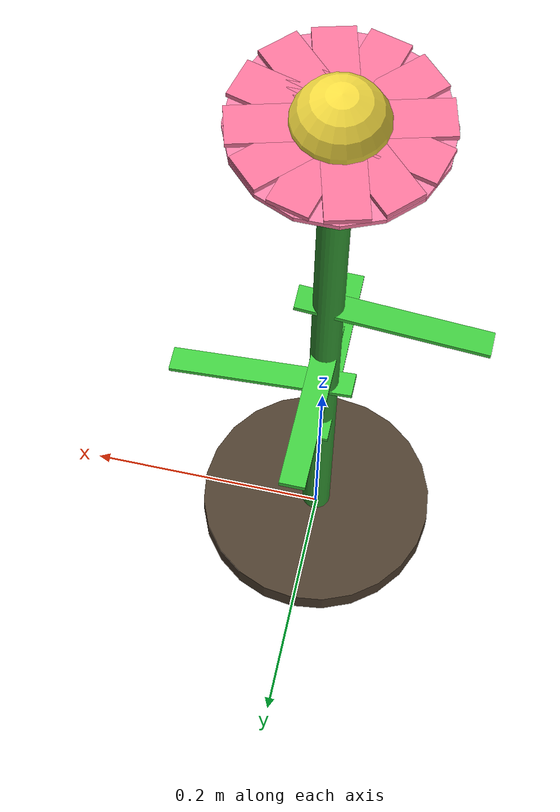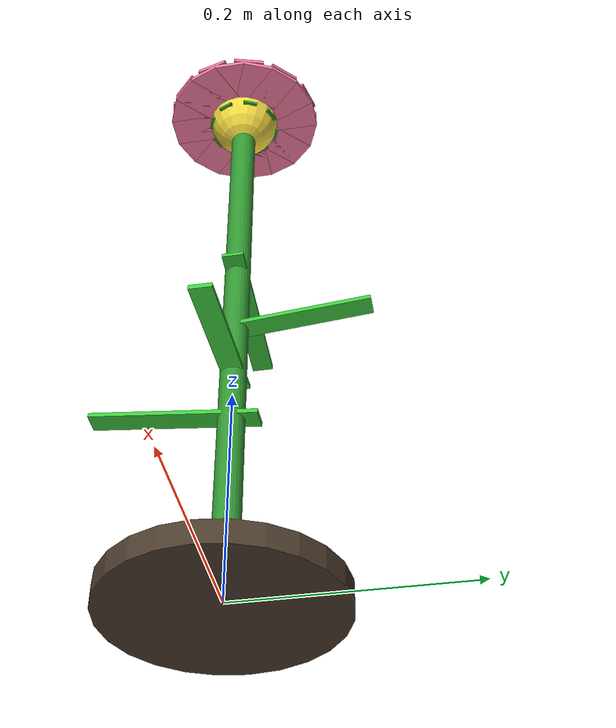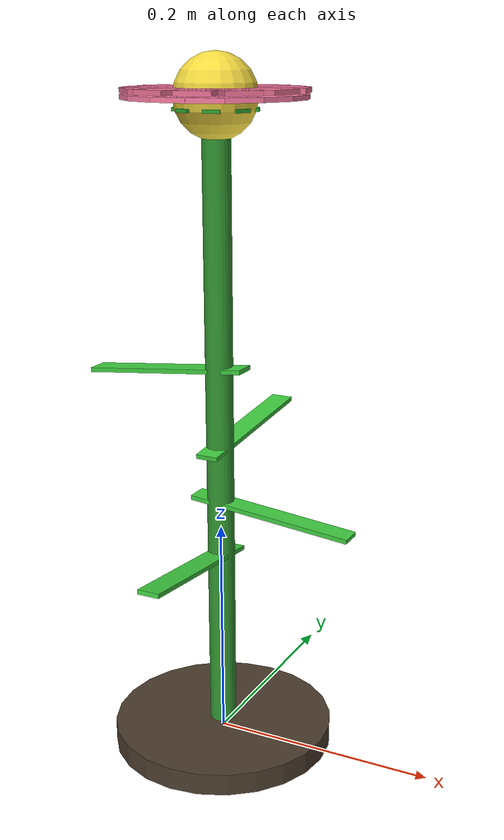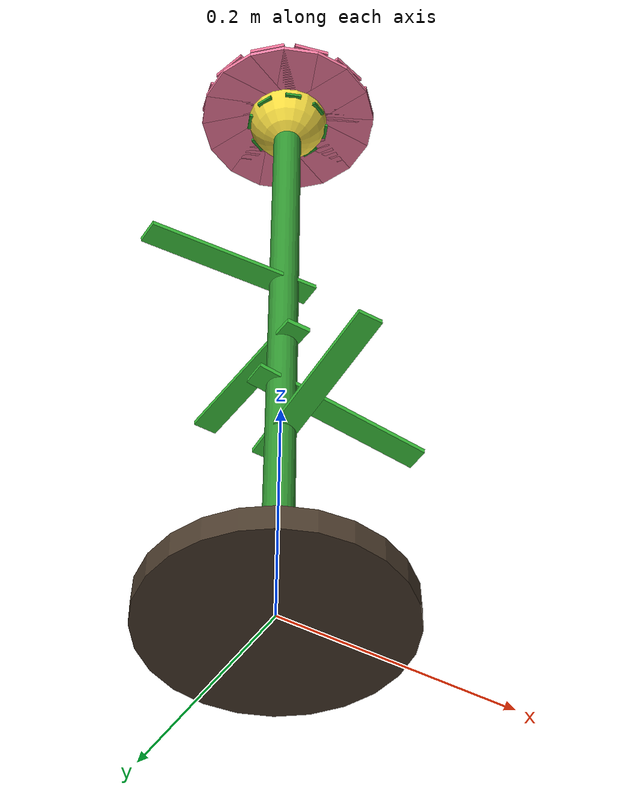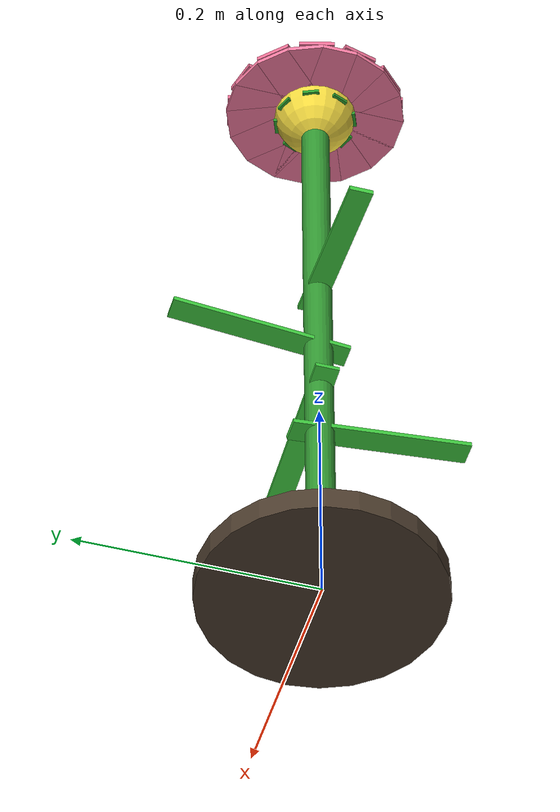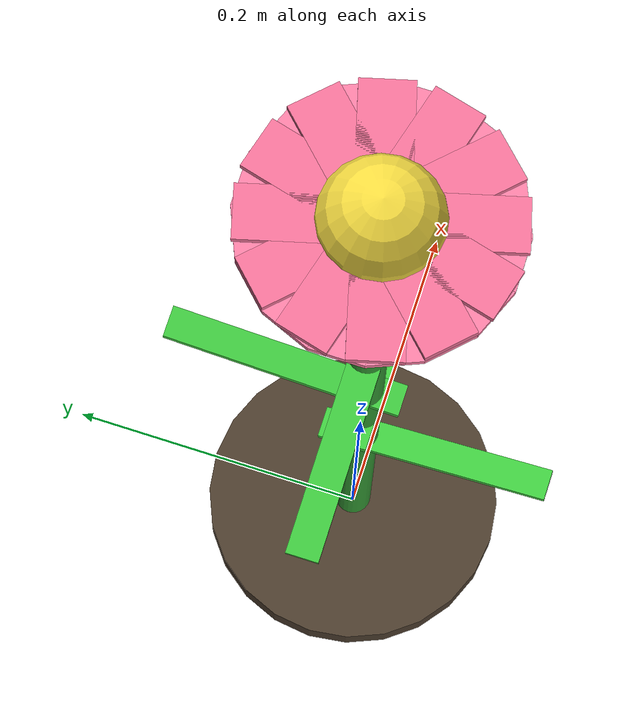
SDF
<?xml version="1.0" ?>
<sdf version="1.7">
  <model name="flower_v3">
    <static>true</static>

    <!-- Base -->
    <link name="base">
      <pose>0 0 0 0 0 0</pose>
      <collision name="base_collision">
        <geometry><cylinder><radius>0.1</radius><length>0.02</length></cylinder></geometry>
      </collision>
      <visual name="base_visual">
        <geometry><cylinder><radius>0.1</radius><length>0.02</length></cylinder></geometry>
        <material>
          <ambient>0.25 0.2 0.15 1</ambient>
          <diffuse>0.3 0.24 0.18 1</diffuse>
          <specular>0.05 0.05 0.05 1</specular>
        </material>
      </visual>
    </link>

    <!-- Stem -->
    <link name="stem">
      <pose>0 0 0.275 0 0 0</pose>
      <collision name="stem_collision">
        <geometry><cylinder><radius>0.012</radius><length>0.55</length></cylinder></geometry>
      </collision>
      <visual name="stem_visual">
        <geometry><cylinder><radius>0.012</radius><length>0.55</length></cylinder></geometry>
        <material>
          <ambient>0.1 0.3 0.1 1</ambient>
          <diffuse>0.2 0.6 0.2 1</diffuse>
          <specular>0.05 0.05 0.05 1</specular>
        </material>
      </visual>
    </link>

    <!-- Center -->
    <link name="center">
      <pose>0 0 0.570 0 0 0</pose>
      <collision name="center_collision">
        <geometry><sphere><radius>0.035</radius></sphere></geometry>
      </collision>
      <visual name="center_visual">
        <geometry><sphere><radius>0.035</radius></sphere></geometry>
        <material>
          <ambient>0.6 0.5 0.1 1</ambient>
          <diffuse>0.95 0.85 0.25 1</diffuse>
          <specular>0.15 0.15 0.15 1</specular>
        </material>
      </visual>
    </link>

    <!-- Petals -->
    <link name="petal_r1_0">
      <pose>0 0 0.5700000000000001 0 0 0.0</pose>
      <collision name="petal_r1_0_collision">
        <geometry>
          <box><size>0.15 0.03 0.004</size></box>
        </geometry>
      </collision>
      <visual name="petal_r1_0_visual">
        <geometry>
          <box><size>0.15 0.03 0.004</size></box>
        </geometry>
        <material>
          <ambient>0.55 0.2 0.3 1</ambient>
          <diffuse>1.0 0.5 0.65 1</diffuse>
          <specular>0.2 0.2 0.2 1</specular>
        </material>
      </visual>
    </link>
    <link name="petal_r1_1">
      <pose>0 0 0.5700000000000001 0 0 0.39269908169872414</pose>
      <collision name="petal_r1_1_collision">
        <geometry>
          <box><size>0.15 0.03 0.004</size></box>
        </geometry>
      </collision>
      <visual name="petal_r1_1_visual">
        <geometry>
          <box><size>0.15 0.03 0.004</size></box>
        </geometry>
        <material>
          <ambient>0.55 0.2 0.3 1</ambient>
          <diffuse>1.0 0.5 0.65 1</diffuse>
          <specular>0.2 0.2 0.2 1</specular>
        </material>
      </visual>
    </link>
    <link name="petal_r1_2">
      <pose>0 0 0.5700000000000001 0 0 0.7853981633974483</pose>
      <collision name="petal_r1_2_collision">
        <geometry>
          <box><size>0.15 0.03 0.004</size></box>
        </geometry>
      </collision>
      <visual name="petal_r1_2_visual">
        <geometry>
          <box><size>0.15 0.03 0.004</size></box>
        </geometry>
        <material>
          <ambient>0.55 0.2 0.3 1</ambient>
          <diffuse>1.0 0.5 0.65 1</diffuse>
          <specular>0.2 0.2 0.2 1</specular>
        </material>
      </visual>
    </link>
    <link name="petal_r1_3">
      <pose>0 0 0.5700000000000001 0 0 1.1780972450961724</pose>
      <collision name="petal_r1_3_collision">
        <geometry>
          <box><size>0.15 0.03 0.004</size></box>
        </geometry>
      </collision>
      <visual name="petal_r1_3_visual">
        <geometry>
          <box><size>0.15 0.03 0.004</size></box>
        </geometry>
        <material>
          <ambient>0.55 0.2 0.3 1</ambient>
          <diffuse>1.0 0.5 0.65 1</diffuse>
          <specular>0.2 0.2 0.2 1</specular>
        </material>
      </visual>
    </link>
    <link name="petal_r1_4">
      <pose>0 0 0.5700000000000001 0 0 1.5707963267948966</pose>
      <collision name="petal_r1_4_collision">
        <geometry>
          <box><size>0.15 0.03 0.004</size></box>
        </geometry>
      </collision>
      <visual name="petal_r1_4_visual">
        <geometry>
          <box><size>0.15 0.03 0.004</size></box>
        </geometry>
        <material>
          <ambient>0.55 0.2 0.3 1</ambient>
          <diffuse>1.0 0.5 0.65 1</diffuse>
          <specular>0.2 0.2 0.2 1</specular>
        </material>
      </visual>
    </link>
    <link name="petal_r1_5">
      <pose>0 0 0.5700000000000001 0 0 1.9634954084936207</pose>
      <collision name="petal_r1_5_collision">
        <geometry>
          <box><size>0.15 0.03 0.004</size></box>
        </geometry>
      </collision>
      <visual name="petal_r1_5_visual">
        <geometry>
          <box><size>0.15 0.03 0.004</size></box>
        </geometry>
        <material>
          <ambient>0.55 0.2 0.3 1</ambient>
          <diffuse>1.0 0.5 0.65 1</diffuse>
          <specular>0.2 0.2 0.2 1</specular>
        </material>
      </visual>
    </link>
    <link name="petal_r1_6">
      <pose>0 0 0.5700000000000001 0 0 2.356194490192345</pose>
      <collision name="petal_r1_6_collision">
        <geometry>
          <box><size>0.15 0.03 0.004</size></box>
        </geometry>
      </collision>
      <visual name="petal_r1_6_visual">
        <geometry>
          <box><size>0.15 0.03 0.004</size></box>
        </geometry>
        <material>
          <ambient>0.55 0.2 0.3 1</ambient>
          <diffuse>1.0 0.5 0.65 1</diffuse>
          <specular>0.2 0.2 0.2 1</specular>
        </material>
      </visual>
    </link>
    <link name="petal_r1_7">
      <pose>0 0 0.5700000000000001 0 0 2.748893571891069</pose>
      <collision name="petal_r1_7_collision">
        <geometry>
          <box><size>0.15 0.03 0.004</size></box>
        </geometry>
      </collision>
      <visual name="petal_r1_7_visual">
        <geometry>
          <box><size>0.15 0.03 0.004</size></box>
        </geometry>
        <material>
          <ambient>0.55 0.2 0.3 1</ambient>
          <diffuse>1.0 0.5 0.65 1</diffuse>
          <specular>0.2 0.2 0.2 1</specular>
        </material>
      </visual>
    </link>
    <link name="petal_r1_8">
      <pose>0 0 0.5700000000000001 0 0 3.141592653589793</pose>
      <collision name="petal_r1_8_collision">
        <geometry>
          <box><size>0.15 0.03 0.004</size></box>
        </geometry>
      </collision>
      <visual name="petal_r1_8_visual">
        <geometry>
          <box><size>0.15 0.03 0.004</size></box>
        </geometry>
        <material>
          <ambient>0.55 0.2 0.3 1</ambient>
          <diffuse>1.0 0.5 0.65 1</diffuse>
          <specular>0.2 0.2 0.2 1</specular>
        </material>
      </visual>
    </link>
    <link name="petal_r1_9">
      <pose>0 0 0.5700000000000001 0 0 3.5342917352885173</pose>
      <collision name="petal_r1_9_collision">
        <geometry>
          <box><size>0.15 0.03 0.004</size></box>
        </geometry>
      </collision>
      <visual name="petal_r1_9_visual">
        <geometry>
          <box><size>0.15 0.03 0.004</size></box>
        </geometry>
        <material>
          <ambient>0.55 0.2 0.3 1</ambient>
          <diffuse>1.0 0.5 0.65 1</diffuse>
          <specular>0.2 0.2 0.2 1</specular>
        </material>
      </visual>
    </link>
    <link name="petal_r1_10">
      <pose>0 0 0.5700000000000001 0 0 3.9269908169872414</pose>
      <collision name="petal_r1_10_collision">
        <geometry>
          <box><size>0.15 0.03 0.004</size></box>
        </geometry>
      </collision>
      <visual name="petal_r1_10_visual">
        <geometry>
          <box><size>0.15 0.03 0.004</size></box>
        </geometry>
        <material>
          <ambient>0.55 0.2 0.3 1</ambient>
          <diffuse>1.0 0.5 0.65 1</diffuse>
          <specular>0.2 0.2 0.2 1</specular>
        </material>
      </visual>
    </link>
    <link name="petal_r1_11">
      <pose>0 0 0.5700000000000001 0 0 4.319689898685965</pose>
      <collision name="petal_r1_11_collision">
        <geometry>
          <box><size>0.15 0.03 0.004</size></box>
        </geometry>
      </collision>
      <visual name="petal_r1_11_visual">
        <geometry>
          <box><size>0.15 0.03 0.004</size></box>
        </geometry>
        <material>
          <ambient>0.55 0.2 0.3 1</ambient>
          <diffuse>1.0 0.5 0.65 1</diffuse>
          <specular>0.2 0.2 0.2 1</specular>
        </material>
      </visual>
    </link>
    <link name="petal_r1_12">
      <pose>0 0 0.5700000000000001 0 0 4.71238898038469</pose>
      <collision name="petal_r1_12_collision">
        <geometry>
          <box><size>0.15 0.03 0.004</size></box>
        </geometry>
      </collision>
      <visual name="petal_r1_12_visual">
        <geometry>
          <box><size>0.15 0.03 0.004</size></box>
        </geometry>
        <material>
          <ambient>0.55 0.2 0.3 1</ambient>
          <diffuse>1.0 0.5 0.65 1</diffuse>
          <specular>0.2 0.2 0.2 1</specular>
        </material>
      </visual>
    </link>
    <link name="petal_r1_13">
      <pose>0 0 0.5700000000000001 0 0 5.105088062083414</pose>
      <collision name="petal_r1_13_collision">
        <geometry>
          <box><size>0.15 0.03 0.004</size></box>
        </geometry>
      </collision>
      <visual name="petal_r1_13_visual">
        <geometry>
          <box><size>0.15 0.03 0.004</size></box>
        </geometry>
        <material>
          <ambient>0.55 0.2 0.3 1</ambient>
          <diffuse>1.0 0.5 0.65 1</diffuse>
          <specular>0.2 0.2 0.2 1</specular>
        </material>
      </visual>
    </link>
    <link name="petal_r1_14">
      <pose>0 0 0.5700000000000001 0 0 5.497787143782138</pose>
      <collision name="petal_r1_14_collision">
        <geometry>
          <box><size>0.15 0.03 0.004</size></box>
        </geometry>
      </collision>
      <visual name="petal_r1_14_visual">
        <geometry>
          <box><size>0.15 0.03 0.004</size></box>
        </geometry>
        <material>
          <ambient>0.55 0.2 0.3 1</ambient>
          <diffuse>1.0 0.5 0.65 1</diffuse>
          <specular>0.2 0.2 0.2 1</specular>
        </material>
      </visual>
    </link>
    <link name="petal_r1_15">
      <pose>0 0 0.5700000000000001 0 0 5.890486225480862</pose>
      <collision name="petal_r1_15_collision">
        <geometry>
          <box><size>0.15 0.03 0.004</size></box>
        </geometry>
      </collision>
      <visual name="petal_r1_15_visual">
        <geometry>
          <box><size>0.15 0.03 0.004</size></box>
        </geometry>
        <material>
          <ambient>0.55 0.2 0.3 1</ambient>
          <diffuse>1.0 0.5 0.65 1</diffuse>
          <specular>0.2 0.2 0.2 1</specular>
        </material>
      </visual>
    </link>
    <link name="petal_r2_0">
      <pose>0 0 0.5750000000000001 0 0 0.2617993877991494</pose>
      <collision name="petal_r2_0_collision">
        <geometry>
          <box><size>0.15 0.03 0.004</size></box>
        </geometry>
      </collision>
      <visual name="petal_r2_0_visual">
        <geometry>
          <box><size>0.15 0.03 0.004</size></box>
        </geometry>
        <material>
          <ambient>0.45 0.15 0.25 1</ambient>
          <diffuse>0.95 0.45 0.6 1</diffuse>
          <specular>0.2 0.2 0.2 1</specular>
        </material>
      </visual>
    </link>
    <link name="petal_r2_1">
      <pose>0 0 0.5750000000000001 0 0 0.7853981633974483</pose>
      <collision name="petal_r2_1_collision">
        <geometry>
          <box><size>0.15 0.03 0.004</size></box>
        </geometry>
      </collision>
      <visual name="petal_r2_1_visual">
        <geometry>
          <box><size>0.15 0.03 0.004</size></box>
        </geometry>
        <material>
          <ambient>0.45 0.15 0.25 1</ambient>
          <diffuse>0.95 0.45 0.6 1</diffuse>
          <specular>0.2 0.2 0.2 1</specular>
        </material>
      </visual>
    </link>
    <link name="petal_r2_2">
      <pose>0 0 0.5750000000000001 0 0 1.308996938995747</pose>
      <collision name="petal_r2_2_collision">
        <geometry>
          <box><size>0.15 0.03 0.004</size></box>
        </geometry>
      </collision>
      <visual name="petal_r2_2_visual">
        <geometry>
          <box><size>0.15 0.03 0.004</size></box>
        </geometry>
        <material>
          <ambient>0.45 0.15 0.25 1</ambient>
          <diffuse>0.95 0.45 0.6 1</diffuse>
          <specular>0.2 0.2 0.2 1</specular>
        </material>
      </visual>
    </link>
    <link name="petal_r2_3">
      <pose>0 0 0.5750000000000001 0 0 1.832595714594046</pose>
      <collision name="petal_r2_3_collision">
        <geometry>
          <box><size>0.15 0.03 0.004</size></box>
        </geometry>
      </collision>
      <visual name="petal_r2_3_visual">
        <geometry>
          <box><size>0.15 0.03 0.004</size></box>
        </geometry>
        <material>
          <ambient>0.45 0.15 0.25 1</ambient>
          <diffuse>0.95 0.45 0.6 1</diffuse>
          <specular>0.2 0.2 0.2 1</specular>
        </material>
      </visual>
    </link>
    <link name="petal_r2_4">
      <pose>0 0 0.5750000000000001 0 0 2.356194490192345</pose>
      <collision name="petal_r2_4_collision">
        <geometry>
          <box><size>0.15 0.03 0.004</size></box>
        </geometry>
      </collision>
      <visual name="petal_r2_4_visual">
        <geometry>
          <box><size>0.15 0.03 0.004</size></box>
        </geometry>
        <material>
          <ambient>0.45 0.15 0.25 1</ambient>
          <diffuse>0.95 0.45 0.6 1</diffuse>
          <specular>0.2 0.2 0.2 1</specular>
        </material>
      </visual>
    </link>
    <link name="petal_r2_5">
      <pose>0 0 0.5750000000000001 0 0 2.8797932657906435</pose>
      <collision name="petal_r2_5_collision">
        <geometry>
          <box><size>0.15 0.03 0.004</size></box>
        </geometry>
      </collision>
      <visual name="petal_r2_5_visual">
        <geometry>
          <box><size>0.15 0.03 0.004</size></box>
        </geometry>
        <material>
          <ambient>0.45 0.15 0.25 1</ambient>
          <diffuse>0.95 0.45 0.6 1</diffuse>
          <specular>0.2 0.2 0.2 1</specular>
        </material>
      </visual>
    </link>
    <link name="petal_r2_6">
      <pose>0 0 0.5750000000000001 0 0 3.4033920413889427</pose>
      <collision name="petal_r2_6_collision">
        <geometry>
          <box><size>0.15 0.03 0.004</size></box>
        </geometry>
      </collision>
      <visual name="petal_r2_6_visual">
        <geometry>
          <box><size>0.15 0.03 0.004</size></box>
        </geometry>
        <material>
          <ambient>0.45 0.15 0.25 1</ambient>
          <diffuse>0.95 0.45 0.6 1</diffuse>
          <specular>0.2 0.2 0.2 1</specular>
        </material>
      </visual>
    </link>
    <link name="petal_r2_7">
      <pose>0 0 0.5750000000000001 0 0 3.9269908169872414</pose>
      <collision name="petal_r2_7_collision">
        <geometry>
          <box><size>0.15 0.03 0.004</size></box>
        </geometry>
      </collision>
      <visual name="petal_r2_7_visual">
        <geometry>
          <box><size>0.15 0.03 0.004</size></box>
        </geometry>
        <material>
          <ambient>0.45 0.15 0.25 1</ambient>
          <diffuse>0.95 0.45 0.6 1</diffuse>
          <specular>0.2 0.2 0.2 1</specular>
        </material>
      </visual>
    </link>
    <link name="petal_r2_8">
      <pose>0 0 0.5750000000000001 0 0 4.45058959258554</pose>
      <collision name="petal_r2_8_collision">
        <geometry>
          <box><size>0.15 0.03 0.004</size></box>
        </geometry>
      </collision>
      <visual name="petal_r2_8_visual">
        <geometry>
          <box><size>0.15 0.03 0.004</size></box>
        </geometry>
        <material>
          <ambient>0.45 0.15 0.25 1</ambient>
          <diffuse>0.95 0.45 0.6 1</diffuse>
          <specular>0.2 0.2 0.2 1</specular>
        </material>
      </visual>
    </link>
    <link name="petal_r2_9">
      <pose>0 0 0.5750000000000001 0 0 4.974188368183839</pose>
      <collision name="petal_r2_9_collision">
        <geometry>
          <box><size>0.15 0.03 0.004</size></box>
        </geometry>
      </collision>
      <visual name="petal_r2_9_visual">
        <geometry>
          <box><size>0.15 0.03 0.004</size></box>
        </geometry>
        <material>
          <ambient>0.45 0.15 0.25 1</ambient>
          <diffuse>0.95 0.45 0.6 1</diffuse>
          <specular>0.2 0.2 0.2 1</specular>
        </material>
      </visual>
    </link>
    <link name="petal_r2_10">
      <pose>0 0 0.5750000000000001 0 0 5.497787143782137</pose>
      <collision name="petal_r2_10_collision">
        <geometry>
          <box><size>0.15 0.03 0.004</size></box>
        </geometry>
      </collision>
      <visual name="petal_r2_10_visual">
        <geometry>
          <box><size>0.15 0.03 0.004</size></box>
        </geometry>
        <material>
          <ambient>0.45 0.15 0.25 1</ambient>
          <diffuse>0.95 0.45 0.6 1</diffuse>
          <specular>0.2 0.2 0.2 1</specular>
        </material>
      </visual>
    </link>
    <link name="petal_r2_11">
      <pose>0 0 0.5750000000000001 0 0 6.021385919380436</pose>
      <collision name="petal_r2_11_collision">
        <geometry>
          <box><size>0.15 0.03 0.004</size></box>
        </geometry>
      </collision>
      <visual name="petal_r2_11_visual">
        <geometry>
          <box><size>0.15 0.03 0.004</size></box>
        </geometry>
        <material>
          <ambient>0.45 0.15 0.25 1</ambient>
          <diffuse>0.95 0.45 0.6 1</diffuse>
          <specular>0.2 0.2 0.2 1</specular>
        </material>
      </visual>
    </link>

    <!-- Sepals -->
    <link name="sepal_0">
      <pose>0 0 0.56 0 0 0.39269908169872414</pose>
      <collision name="sepal_0_collision">
        <geometry><box><size>0.07 0.014 0.003</size></box></geometry>
      </collision>
      <visual name="sepal_0_visual">
        <geometry><box><size>0.07 0.014 0.003</size></box></geometry>
        <material>
          <ambient>0.08 0.35 0.08 1</ambient>
          <diffuse>0.18 0.65 0.18 1</diffuse>
          <specular>0.05 0.05 0.05 1</specular>
        </material>
      </visual>
    </link>
    <link name="sepal_1">
      <pose>0 0 0.56 0 0 1.1780972450961724</pose>
      <collision name="sepal_1_collision">
        <geometry><box><size>0.07 0.014 0.003</size></box></geometry>
      </collision>
      <visual name="sepal_1_visual">
        <geometry><box><size>0.07 0.014 0.003</size></box></geometry>
        <material>
          <ambient>0.08 0.35 0.08 1</ambient>
          <diffuse>0.18 0.65 0.18 1</diffuse>
          <specular>0.05 0.05 0.05 1</specular>
        </material>
      </visual>
    </link>
    <link name="sepal_2">
      <pose>0 0 0.56 0 0 1.9634954084936207</pose>
      <collision name="sepal_2_collision">
        <geometry><box><size>0.07 0.014 0.003</size></box></geometry>
      </collision>
      <visual name="sepal_2_visual">
        <geometry><box><size>0.07 0.014 0.003</size></box></geometry>
        <material>
          <ambient>0.08 0.35 0.08 1</ambient>
          <diffuse>0.18 0.65 0.18 1</diffuse>
          <specular>0.05 0.05 0.05 1</specular>
        </material>
      </visual>
    </link>
    <link name="sepal_3">
      <pose>0 0 0.56 0 0 2.748893571891069</pose>
      <collision name="sepal_3_collision">
        <geometry><box><size>0.07 0.014 0.003</size></box></geometry>
      </collision>
      <visual name="sepal_3_visual">
        <geometry><box><size>0.07 0.014 0.003</size></box></geometry>
        <material>
          <ambient>0.08 0.35 0.08 1</ambient>
          <diffuse>0.18 0.65 0.18 1</diffuse>
          <specular>0.05 0.05 0.05 1</specular>
        </material>
      </visual>
    </link>
    <link name="sepal_4">
      <pose>0 0 0.56 0 0 3.5342917352885173</pose>
      <collision name="sepal_4_collision">
        <geometry><box><size>0.07 0.014 0.003</size></box></geometry>
      </collision>
      <visual name="sepal_4_visual">
        <geometry><box><size>0.07 0.014 0.003</size></box></geometry>
        <material>
          <ambient>0.08 0.35 0.08 1</ambient>
          <diffuse>0.18 0.65 0.18 1</diffuse>
          <specular>0.05 0.05 0.05 1</specular>
        </material>
      </visual>
    </link>
    <link name="sepal_5">
      <pose>0 0 0.56 0 0 4.319689898685965</pose>
      <collision name="sepal_5_collision">
        <geometry><box><size>0.07 0.014 0.003</size></box></geometry>
      </collision>
      <visual name="sepal_5_visual">
        <geometry><box><size>0.07 0.014 0.003</size></box></geometry>
        <material>
          <ambient>0.08 0.35 0.08 1</ambient>
          <diffuse>0.18 0.65 0.18 1</diffuse>
          <specular>0.05 0.05 0.05 1</specular>
        </material>
      </visual>
    </link>
    <link name="sepal_6">
      <pose>0 0 0.56 0 0 5.105088062083414</pose>
      <collision name="sepal_6_collision">
        <geometry><box><size>0.07 0.014 0.003</size></box></geometry>
      </collision>
      <visual name="sepal_6_visual">
        <geometry><box><size>0.07 0.014 0.003</size></box></geometry>
        <material>
          <ambient>0.08 0.35 0.08 1</ambient>
          <diffuse>0.18 0.65 0.18 1</diffuse>
          <specular>0.05 0.05 0.05 1</specular>
        </material>
      </visual>
    </link>
    <link name="sepal_7">
      <pose>0 0 0.56 0 0 5.890486225480862</pose>
      <collision name="sepal_7_collision">
        <geometry><box><size>0.07 0.014 0.003</size></box></geometry>
      </collision>
      <visual name="sepal_7_visual">
        <geometry><box><size>0.07 0.014 0.003</size></box></geometry>
        <material>
          <ambient>0.08 0.35 0.08 1</ambient>
          <diffuse>0.18 0.65 0.18 1</diffuse>
          <specular>0.05 0.05 0.05 1</specular>
        </material>
      </visual>
    </link>

    <!-- Leaves -->
    <link name="leaf_0">
      <pose>0.050 0.000 0.220 0.000 0.100 0.000</pose>
      <collision name="leaf_0_collision">
        <geometry>
          <box><size>0.15 0.02 0.004</size></box>
        </geometry>
      </collision>
      <visual name="leaf_0_visual">
        <geometry>
          <box><size>0.15 0.02 0.004</size></box>
        </geometry>
        <material>
          <ambient>0.15 0.4 0.15 1</ambient>
          <diffuse>0.25 0.8 0.25 1</diffuse>
          <specular>0.08 0.08 0.08 1</specular>
        </material>
      </visual>
    </link>
    <link name="leaf_1">
      <pose>0.000 0.050 0.280 0.000 -0.100 1.571</pose>
      <collision name="leaf_1_collision">
        <geometry>
          <box><size>0.15 0.02 0.004</size></box>
        </geometry>
      </collision>
      <visual name="leaf_1_visual">
        <geometry>
          <box><size>0.15 0.02 0.004</size></box>
        </geometry>
        <material>
          <ambient>0.15 0.4 0.15 1</ambient>
          <diffuse>0.25 0.8 0.25 1</diffuse>
          <specular>0.08 0.08 0.08 1</specular>
        </material>
      </visual>
    </link>
    <link name="leaf_2">
      <pose>-0.050 0.000 0.340 0.000 0.100 3.142</pose>
      <collision name="leaf_2_collision">
        <geometry>
          <box><size>0.15 0.02 0.004</size></box>
        </geometry>
      </collision>
      <visual name="leaf_2_visual">
        <geometry>
          <box><size>0.15 0.02 0.004</size></box>
        </geometry>
        <material>
          <ambient>0.15 0.4 0.15 1</ambient>
          <diffuse>0.25 0.8 0.25 1</diffuse>
          <specular>0.08 0.08 0.08 1</specular>
        </material>
      </visual>
    </link>
    <link name="leaf_3">
      <pose>-0.000 -0.050 0.180 0.000 -0.100 4.712</pose>
      <collision name="leaf_3_collision">
        <geometry>
          <box><size>0.15 0.02 0.004</size></box>
        </geometry>
      </collision>
      <visual name="leaf_3_visual">
        <geometry>
          <box><size>0.15 0.02 0.004</size></box>
        </geometry>
        <material>
          <ambient>0.15 0.4 0.15 1</ambient>
          <diffuse>0.25 0.8 0.25 1</diffuse>
          <specular>0.08 0.08 0.08 1</specular>
        </material>
      </visual>
    </link>

  </model>
</sdf>
